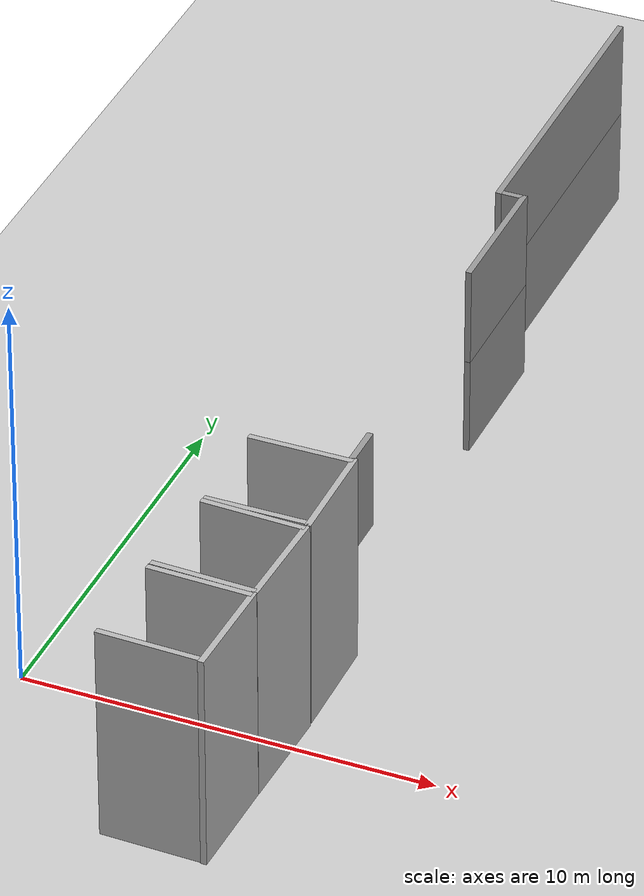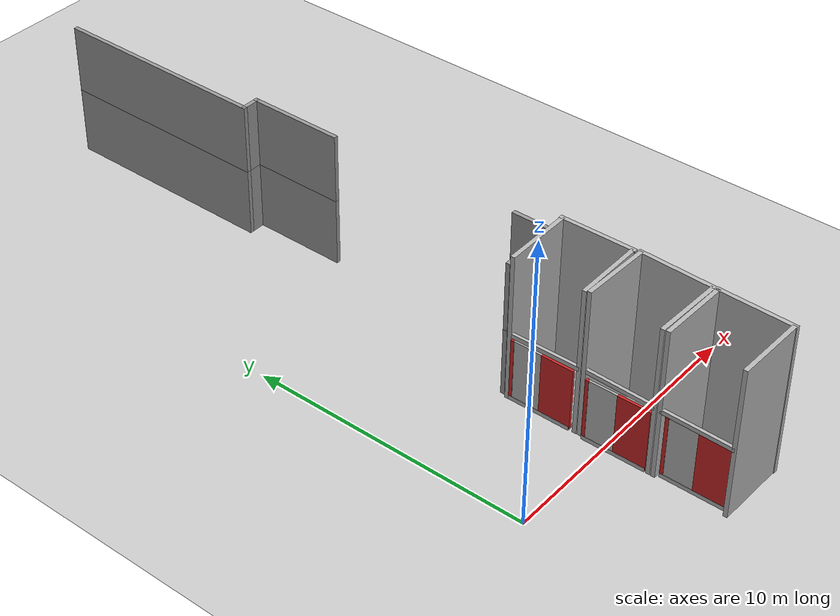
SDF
<sdf version="1.6">
 <world name="default">
  <model name="ground_plane">
   <static>1</static>
   <link name="link">
    <collision name="collision">
     <geometry><plane><normal>0 0 1</normal><size>100 100</size></plane></geometry>
     <surface>
      <contact><collide_bitmask>65535</collide_bitmask></contact>
      <friction><ode><mu>100</mu><mu2>50</mu2></ode></friction>
     </surface>
    </collision>
    <visual name="visual">
     <cast_shadows>0</cast_shadows>
     <geometry><plane><normal>0 0 1</normal><size>100 100</size></plane></geometry>
     <material>
      <script><uri>file://media/materials/scripts/gazebo.material</uri><name>Gazebo/Grey</name></script>
     </material>
    </visual>
   </link>
  </model>
  <model name="bush_refined_2floors">
   <pose>3.42472 8.10808 0 0 -0 0</pose>
   <link name="Wall_1012">
    <collision name="Wall_1012_Collision">
     <geometry><box><size>1.5 0.15 2.5</size></box></geometry>
     <pose>0 0 1.25 0 -0 0</pose>
    </collision>
    <visual name="Wall_1012_Visual">
     <pose>0 0 1.25 0 -0 0</pose>
     <geometry><box><size>1.5 0.15 2.5</size></box></geometry>
     <material>
      <script><uri>file://media/materials/scripts/gazebo.material</uri><name>Gazebo/Grey</name></script>
      <ambient>1 1 1 1</ambient>
     </material>
     <meta><layer>1</layer></meta>
    </visual>
    <pose>2.80971 -3.61953 2.5 0 -0 -1.5708</pose>
   </link>
   <link name="Wall_1013">
    <collision name="Wall_1013_Collision">
     <geometry><box><size>2.25 0.15 2.5</size></box></geometry>
     <pose>0 0 1.25 0 -0 0</pose>
    </collision>
    <visual name="Wall_1013_Visual">
     <pose>0 0 1.25 0 -0 0</pose>
     <geometry><box><size>2.25 0.15 2.5</size></box></geometry>
     <material>
      <script><uri>file://media/materials/scripts/gazebo.material</uri><name>Gazebo/Grey</name></script>
      <ambient>1 1 1 1</ambient>
     </material>
     <meta><layer>1</layer></meta>
    </visual>
    <pose>1.75971 -4.29453 2.5 0 -0 3.14159</pose>
   </link>
   <link name="Wall_1023">
    <collision name="Wall_1023_Collision">
     <geometry><box><size>8 0.15 2.5</size></box></geometry>
     <pose>0 0 1.25 0 -0 0</pose>
    </collision>
    <visual name="Wall_1023_Visual">
     <pose>0 0 1.25 0 -0 0</pose>
     <geometry><box><size>8 0.15 2.5</size></box></geometry>
     <material>
      <script><uri>file://media/materials/scripts/gazebo.material</uri><name>Gazebo/Grey</name></script>
      <ambient>1 1 1 1</ambient>
     </material>
     <meta><layer>1</layer></meta>
    </visual>
    <pose>1.8363 11.2255 2.5 0 -0 -1.5708</pose>
   </link>
   <link name="Wall_1024">
    <collision name="Wall_1024_Collision">
     <geometry><box><size>0.75 0.15 2.5</size></box></geometry>
     <pose>0 0 1.25 0 -0 0</pose>
    </collision>
    <visual name="Wall_1024_Visual">
     <pose>0 0 1.25 0 -0 0</pose>
     <geometry><box><size>0.75 0.15 2.5</size></box></geometry>
     <material>
      <script><uri>file://media/materials/scripts/gazebo.material</uri><name>Gazebo/Grey</name></script>
      <ambient>1 1 1 1</ambient>
     </material>
     <meta><layer>1</layer></meta>
    </visual>
    <pose>2.1363 7.30051 2.5 0 -0 0</pose>
   </link>
   <link name="Wall_1025">
    <collision name="Wall_1025_Collision">
     <geometry><box><size>3.5 0.15 2.5</size></box></geometry>
     <pose>0 0 1.25 0 -0 0</pose>
    </collision>
    <visual name="Wall_1025_Visual">
     <pose>0 0 1.25 0 -0 0</pose>
     <geometry><box><size>3.5 0.15 2.5</size></box></geometry>
     <material>
      <script><uri>file://media/materials/scripts/gazebo.material</uri><name>Gazebo/Grey</name></script>
      <ambient>1 1 1 1</ambient>
     </material>
     <meta><layer>1</layer></meta>
    </visual>
    <pose>2.4363 5.62552 2.5 0 -0 -1.5708</pose>
   </link>
   <link name="Wall_108">
    <collision name="Wall_108_Collision">
     <geometry><box><size>8 0.15 2.5</size></box></geometry>
     <pose>0 0 1.25 0 -0 0</pose>
    </collision>
    <visual name="Wall_108_Visual">
     <pose>0 0 1.25 0 -0 0</pose>
     <geometry><box><size>8 0.15 2.5</size></box></geometry>
     <material>
      <script><uri>file://media/materials/scripts/gazebo.material</uri><name>Gazebo/Grey</name></script>
      <ambient>1 1 1 1</ambient>
     </material>
     <meta><layer>0</layer></meta>
    </visual>
    <pose>1.8363 11.2255 0 0 -0 -1.5708</pose>
   </link>
   <link name="Wall_109">
    <collision name="Wall_109_Collision">
     <geometry><box><size>0.75 0.15 2.5</size></box></geometry>
     <pose>0 0 1.25 0 -0 0</pose>
    </collision>
    <visual name="Wall_109_Visual">
     <pose>0 0 1.25 0 -0 0</pose>
     <geometry><box><size>0.75 0.15 2.5</size></box></geometry>
     <material>
      <script><uri>file://media/materials/scripts/gazebo.material</uri><name>Gazebo/Grey</name></script>
      <ambient>1 1 1 1</ambient>
     </material>
     <meta><layer>0</layer></meta>
    </visual>
    <pose>2.1363 7.30051 0 0 -0 0</pose>
   </link>
   <link name="Wall_110">
    <collision name="Wall_110_Collision">
     <geometry><box><size>3.5 0.15 2.5</size></box></geometry>
     <pose>0 0 1.25 0 -0 0</pose>
    </collision>
    <visual name="Wall_110_Visual">
     <pose>0 0 1.25 0 -0 0</pose>
     <geometry><box><size>3.5 0.15 2.5</size></box></geometry>
     <material>
      <script><uri>file://media/materials/scripts/gazebo.material</uri><name>Gazebo/Grey</name></script>
      <ambient>1 1 1 1</ambient>
     </material>
     <meta><layer>0</layer></meta>
    </visual>
    <pose>2.4363 5.62552 0 0 -0 -1.5708</pose>
   </link>
   <link name="Wall_94">
    <collision name="Wall_94_Collision">
     <geometry><box><size>2.25 0.15 2.5</size></box></geometry>
     <pose>0 0 1.25 0 -0 0</pose>
    </collision>
    <visual name="Wall_94_Visual">
     <pose>0 0 1.25 0 -0 0</pose>
     <geometry><box><size>2.25 0.15 2.5</size></box></geometry>
     <material>
      <script><uri>file://media/materials/scripts/gazebo.material</uri><name>Gazebo/Grey</name></script>
      <ambient>1 1 1 1</ambient>
     </material>
     <meta><layer>0</layer></meta>
    </visual>
    <pose>1.75971 -4.29453 0 0 -0 3.14159</pose>
   </link>
   <static>1</static>
  </model>
  <model name="elevator_shaft_1">
   <link name="link">
    <visual name="shaft_wall2_visual">
     <pose>0 -1.25 3 0 -0 0</pose>
     <geometry><box><size>2.5 0.15 6</size></box></geometry>
    </visual>
    <visual name="shaft_wall3_visual">
     <pose>-1.25 0 3 0 -0 0</pose>
     <geometry><box><size>0.15 2.7 6</size></box></geometry>
    </visual>
    <visual name="floor0_visual">
     <pose>1.19 0 0.075 0 -0 0</pose>
     <geometry><box><size>0.12 2.5 0.15</size></box></geometry>
    </visual>
    <visual name="floor1_visual">
     <pose>1.19 0 3.075 0 -0 0</pose>
     <geometry><box><size>0.12 2.5 0.15</size></box></geometry>
    </visual>
    <visual name="shaft_wall1_visual">
     <pose>0 1.25 3 0 -0 0</pose>
     <geometry><box><size>2.5 0.15 6</size></box></geometry>
    </visual>
    <collision name="shaft_wall1_collision">
     <pose>0 1.25 3 0 -0 0</pose>
     <geometry><box><size>2.5 0.15 6</size></box></geometry>
     <surface>
      <friction>
       <ode><mu>1</mu><mu2>1</mu2><fdir1>0 0 0</fdir1><slip1>0</slip1><slip2>0</slip2></ode>
       <torsional>
        <coefficient>1</coefficient>
        <patch_radius>0</patch_radius>
        <surface_radius>0</surface_radius>
        <use_patch_radius>1</use_patch_radius>
        <ode><slip>0</slip></ode>
       </torsional>
      </friction>
      <bounce><restitution_coefficient>0</restitution_coefficient><threshold>1e+06</threshold></bounce>
      <contact>
       <collide_without_contact>0</collide_without_contact>
       <collide_without_contact_bitmask>1</collide_without_contact_bitmask>
       <collide_bitmask>1</collide_bitmask>
       <ode>
        <soft_cfm>0</soft_cfm>
        <soft_erp>0.2</soft_erp>
        <kp>1e+13</kp>
        <kd>1</kd>
        <max_vel>0.01</max_vel>
        <min_depth>0</min_depth>
       </ode>
       <bullet>
        <split_impulse>1</split_impulse>
        <split_impulse_penetration_threshold>-0.01</split_impulse_penetration_threshold>
        <soft_cfm>0</soft_cfm>
        <soft_erp>0.2</soft_erp>
        <kp>1e+13</kp>
        <kd>1</kd>
       </bullet>
      </contact>
     </surface>
    </collision>
    <collision name="shaft_wall2_collision">
     <pose>0 -1.25 3 0 -0 0</pose>
     <geometry><box><size>2.5 0.15 6</size></box></geometry>
     <surface>
      <friction>
       <ode><mu>1</mu><mu2>1</mu2><fdir1>0 0 0</fdir1><slip1>0</slip1><slip2>0</slip2></ode>
       <torsional>
        <coefficient>1</coefficient>
        <patch_radius>0</patch_radius>
        <surface_radius>0</surface_radius>
        <use_patch_radius>1</use_patch_radius>
        <ode><slip>0</slip></ode>
       </torsional>
      </friction>
      <bounce><restitution_coefficient>0</restitution_coefficient><threshold>1e+06</threshold></bounce>
      <contact>
       <collide_without_contact>0</collide_without_contact>
       <collide_without_contact_bitmask>1</collide_without_contact_bitmask>
       <collide_bitmask>1</collide_bitmask>
       <ode>
        <soft_cfm>0</soft_cfm>
        <soft_erp>0.2</soft_erp>
        <kp>1e+13</kp>
        <kd>1</kd>
        <max_vel>0.01</max_vel>
        <min_depth>0</min_depth>
       </ode>
       <bullet>
        <split_impulse>1</split_impulse>
        <split_impulse_penetration_threshold>-0.01</split_impulse_penetration_threshold>
        <soft_cfm>0</soft_cfm>
        <soft_erp>0.2</soft_erp>
        <kp>1e+13</kp>
        <kd>1</kd>
       </bullet>
      </contact>
     </surface>
    </collision>
    <collision name="shaft_wall3_collision">
     <pose>-1.25 0 3 0 -0 0</pose>
     <geometry><box><size>0.15 2.7 6</size></box></geometry>
     <surface>
      <friction>
       <ode><mu>1</mu><mu2>1</mu2><fdir1>0 0 0</fdir1><slip1>0</slip1><slip2>0</slip2></ode>
       <torsional>
        <coefficient>1</coefficient>
        <patch_radius>0</patch_radius>
        <surface_radius>0</surface_radius>
        <use_patch_radius>1</use_patch_radius>
        <ode><slip>0</slip></ode>
       </torsional>
      </friction>
      <bounce><restitution_coefficient>0</restitution_coefficient><threshold>1e+06</threshold></bounce>
      <contact>
       <collide_without_contact>0</collide_without_contact>
       <collide_without_contact_bitmask>1</collide_without_contact_bitmask>
       <collide_bitmask>1</collide_bitmask>
       <ode>
        <soft_cfm>0</soft_cfm>
        <soft_erp>0.2</soft_erp>
        <kp>1e+13</kp>
        <kd>1</kd>
        <max_vel>0.01</max_vel>
        <min_depth>0</min_depth>
       </ode>
       <bullet>
        <split_impulse>1</split_impulse>
        <split_impulse_penetration_threshold>-0.01</split_impulse_penetration_threshold>
        <soft_cfm>0</soft_cfm>
        <soft_erp>0.2</soft_erp>
        <kp>1e+13</kp>
        <kd>1</kd>
       </bullet>
      </contact>
     </surface>
    </collision>
    <collision name="floor0_collision">
     <pose>1.19 0 0.075 0 -0 0</pose>
     <geometry><box><size>0.12 2.5 0.15</size></box></geometry>
     <surface>
      <friction>
       <ode><mu>1</mu><mu2>1</mu2><fdir1>0 0 0</fdir1><slip1>0</slip1><slip2>0</slip2></ode>
       <torsional>
        <coefficient>1</coefficient>
        <patch_radius>0</patch_radius>
        <surface_radius>0</surface_radius>
        <use_patch_radius>1</use_patch_radius>
        <ode><slip>0</slip></ode>
       </torsional>
      </friction>
      <bounce><restitution_coefficient>0</restitution_coefficient><threshold>1e+06</threshold></bounce>
      <contact>
       <collide_without_contact>0</collide_without_contact>
       <collide_without_contact_bitmask>1</collide_without_contact_bitmask>
       <collide_bitmask>1</collide_bitmask>
       <ode>
        <soft_cfm>0</soft_cfm>
        <soft_erp>0.2</soft_erp>
        <kp>1e+13</kp>
        <kd>1</kd>
        <max_vel>0.01</max_vel>
        <min_depth>0</min_depth>
       </ode>
       <bullet>
        <split_impulse>1</split_impulse>
        <split_impulse_penetration_threshold>-0.01</split_impulse_penetration_threshold>
        <soft_cfm>0</soft_cfm>
        <soft_erp>0.2</soft_erp>
        <kp>1e+13</kp>
        <kd>1</kd>
       </bullet>
      </contact>
     </surface>
    </collision>
    <collision name="floor1_collision">
     <pose>1.19 0 3.075 0 -0 0</pose>
     <geometry><box><size>0.12 2.5 0.15</size></box></geometry>
     <surface>
      <friction>
       <ode><mu>1</mu><mu2>1</mu2><fdir1>0 0 0</fdir1><slip1>0</slip1><slip2>0</slip2></ode>
       <torsional>
        <coefficient>1</coefficient>
        <patch_radius>0</patch_radius>
        <surface_radius>0</surface_radius>
        <use_patch_radius>1</use_patch_radius>
        <ode><slip>0</slip></ode>
       </torsional>
      </friction>
      <bounce><restitution_coefficient>0</restitution_coefficient><threshold>1e+06</threshold></bounce>
      <contact>
       <collide_without_contact>0</collide_without_contact>
       <collide_without_contact_bitmask>1</collide_without_contact_bitmask>
       <collide_bitmask>1</collide_bitmask>
       <ode>
        <soft_cfm>0</soft_cfm>
        <soft_erp>0.2</soft_erp>
        <kp>1e+13</kp>
        <kd>1</kd>
        <max_vel>0.01</max_vel>
        <min_depth>0</min_depth>
       </ode>
       <bullet>
        <split_impulse>1</split_impulse>
        <split_impulse_penetration_threshold>-0.01</split_impulse_penetration_threshold>
        <soft_cfm>0</soft_cfm>
        <soft_erp>0.2</soft_erp>
        <kp>1e+13</kp>
        <kd>1</kd>
       </bullet>
      </contact>
     </surface>
    </collision>
   </link>
   <static>1</static>
   <pose>5.25914 2.36455 -0.617638 0 0 -3.13334</pose>
  </model>
  <model name="elevator_shaft_2">
   <link name="link">
    <visual name="shaft_wall2_visual">
     <pose>0 -1.25 3 0 -0 0</pose>
     <geometry><box><size>2.5 0.15 6</size></box></geometry>
    </visual>
    <visual name="shaft_wall3_visual">
     <pose>-1.25 0 3 0 -0 0</pose>
     <geometry><box><size>0.15 2.7 6</size></box></geometry>
    </visual>
    <visual name="floor0_visual">
     <pose>1.19 0 0.075 0 -0 0</pose>
     <geometry><box><size>0.12 2.5 0.15</size></box></geometry>
    </visual>
    <visual name="floor1_visual">
     <pose>1.19 0 3.075 0 -0 0</pose>
     <geometry><box><size>0.12 2.5 0.15</size></box></geometry>
    </visual>
    <visual name="shaft_wall1_visual">
     <pose>0 1.25 3 0 -0 0</pose>
     <geometry><box><size>2.5 0.15 6</size></box></geometry>
    </visual>
    <collision name="shaft_wall1_collision">
     <pose>0 1.25 3 0 -0 0</pose>
     <geometry><box><size>2.5 0.15 6</size></box></geometry>
     <surface>
      <friction>
       <ode><mu>1</mu><mu2>1</mu2><fdir1>0 0 0</fdir1><slip1>0</slip1><slip2>0</slip2></ode>
       <torsional>
        <coefficient>1</coefficient>
        <patch_radius>0</patch_radius>
        <surface_radius>0</surface_radius>
        <use_patch_radius>1</use_patch_radius>
        <ode><slip>0</slip></ode>
       </torsional>
      </friction>
      <bounce><restitution_coefficient>0</restitution_coefficient><threshold>1e+06</threshold></bounce>
      <contact>
       <collide_without_contact>0</collide_without_contact>
       <collide_without_contact_bitmask>1</collide_without_contact_bitmask>
       <collide_bitmask>1</collide_bitmask>
       <ode>
        <soft_cfm>0</soft_cfm>
        <soft_erp>0.2</soft_erp>
        <kp>1e+13</kp>
        <kd>1</kd>
        <max_vel>0.01</max_vel>
        <min_depth>0</min_depth>
       </ode>
       <bullet>
        <split_impulse>1</split_impulse>
        <split_impulse_penetration_threshold>-0.01</split_impulse_penetration_threshold>
        <soft_cfm>0</soft_cfm>
        <soft_erp>0.2</soft_erp>
        <kp>1e+13</kp>
        <kd>1</kd>
       </bullet>
      </contact>
     </surface>
    </collision>
    <collision name="shaft_wall2_collision">
     <pose>0 -1.25 3 0 -0 0</pose>
     <geometry><box><size>2.5 0.15 6</size></box></geometry>
     <surface>
      <friction>
       <ode><mu>1</mu><mu2>1</mu2><fdir1>0 0 0</fdir1><slip1>0</slip1><slip2>0</slip2></ode>
       <torsional>
        <coefficient>1</coefficient>
        <patch_radius>0</patch_radius>
        <surface_radius>0</surface_radius>
        <use_patch_radius>1</use_patch_radius>
        <ode><slip>0</slip></ode>
       </torsional>
      </friction>
      <bounce><restitution_coefficient>0</restitution_coefficient><threshold>1e+06</threshold></bounce>
      <contact>
       <collide_without_contact>0</collide_without_contact>
       <collide_without_contact_bitmask>1</collide_without_contact_bitmask>
       <collide_bitmask>1</collide_bitmask>
       <ode>
        <soft_cfm>0</soft_cfm>
        <soft_erp>0.2</soft_erp>
        <kp>1e+13</kp>
        <kd>1</kd>
        <max_vel>0.01</max_vel>
        <min_depth>0</min_depth>
       </ode>
       <bullet>
        <split_impulse>1</split_impulse>
        <split_impulse_penetration_threshold>-0.01</split_impulse_penetration_threshold>
        <soft_cfm>0</soft_cfm>
        <soft_erp>0.2</soft_erp>
        <kp>1e+13</kp>
        <kd>1</kd>
       </bullet>
      </contact>
     </surface>
    </collision>
    <collision name="shaft_wall3_collision">
     <pose>-1.25 0 3 0 -0 0</pose>
     <geometry><box><size>0.15 2.7 6</size></box></geometry>
     <surface>
      <friction>
       <ode><mu>1</mu><mu2>1</mu2><fdir1>0 0 0</fdir1><slip1>0</slip1><slip2>0</slip2></ode>
       <torsional>
        <coefficient>1</coefficient>
        <patch_radius>0</patch_radius>
        <surface_radius>0</surface_radius>
        <use_patch_radius>1</use_patch_radius>
        <ode><slip>0</slip></ode>
       </torsional>
      </friction>
      <bounce><restitution_coefficient>0</restitution_coefficient><threshold>1e+06</threshold></bounce>
      <contact>
       <collide_without_contact>0</collide_without_contact>
       <collide_without_contact_bitmask>1</collide_without_contact_bitmask>
       <collide_bitmask>1</collide_bitmask>
       <ode>
        <soft_cfm>0</soft_cfm>
        <soft_erp>0.2</soft_erp>
        <kp>1e+13</kp>
        <kd>1</kd>
        <max_vel>0.01</max_vel>
        <min_depth>0</min_depth>
       </ode>
       <bullet>
        <split_impulse>1</split_impulse>
        <split_impulse_penetration_threshold>-0.01</split_impulse_penetration_threshold>
        <soft_cfm>0</soft_cfm>
        <soft_erp>0.2</soft_erp>
        <kp>1e+13</kp>
        <kd>1</kd>
       </bullet>
      </contact>
     </surface>
    </collision>
    <collision name="floor0_collision">
     <pose>1.19 0 0.075 0 -0 0</pose>
     <geometry><box><size>0.12 2.5 0.15</size></box></geometry>
     <surface>
      <friction>
       <ode><mu>1</mu><mu2>1</mu2><fdir1>0 0 0</fdir1><slip1>0</slip1><slip2>0</slip2></ode>
       <torsional>
        <coefficient>1</coefficient>
        <patch_radius>0</patch_radius>
        <surface_radius>0</surface_radius>
        <use_patch_radius>1</use_patch_radius>
        <ode><slip>0</slip></ode>
       </torsional>
      </friction>
      <bounce><restitution_coefficient>0</restitution_coefficient><threshold>1e+06</threshold></bounce>
      <contact>
       <collide_without_contact>0</collide_without_contact>
       <collide_without_contact_bitmask>1</collide_without_contact_bitmask>
       <collide_bitmask>1</collide_bitmask>
       <ode>
        <soft_cfm>0</soft_cfm>
        <soft_erp>0.2</soft_erp>
        <kp>1e+13</kp>
        <kd>1</kd>
        <max_vel>0.01</max_vel>
        <min_depth>0</min_depth>
       </ode>
       <bullet>
        <split_impulse>1</split_impulse>
        <split_impulse_penetration_threshold>-0.01</split_impulse_penetration_threshold>
        <soft_cfm>0</soft_cfm>
        <soft_erp>0.2</soft_erp>
        <kp>1e+13</kp>
        <kd>1</kd>
       </bullet>
      </contact>
     </surface>
    </collision>
    <collision name="floor1_collision">
     <pose>1.19 0 3.075 0 -0 0</pose>
     <geometry><box><size>0.12 2.5 0.15</size></box></geometry>
     <surface>
      <friction>
       <ode><mu>1</mu><mu2>1</mu2><fdir1>0 0 0</fdir1><slip1>0</slip1><slip2>0</slip2></ode>
       <torsional>
        <coefficient>1</coefficient>
        <patch_radius>0</patch_radius>
        <surface_radius>0</surface_radius>
        <use_patch_radius>1</use_patch_radius>
        <ode><slip>0</slip></ode>
       </torsional>
      </friction>
      <bounce><restitution_coefficient>0</restitution_coefficient><threshold>1e+06</threshold></bounce>
      <contact>
       <collide_without_contact>0</collide_without_contact>
       <collide_without_contact_bitmask>1</collide_without_contact_bitmask>
       <collide_bitmask>1</collide_bitmask>
       <ode>
        <soft_cfm>0</soft_cfm>
        <soft_erp>0.2</soft_erp>
        <kp>1e+13</kp>
        <kd>1</kd>
        <max_vel>0.01</max_vel>
        <min_depth>0</min_depth>
       </ode>
       <bullet>
        <split_impulse>1</split_impulse>
        <split_impulse_penetration_threshold>-0.01</split_impulse_penetration_threshold>
        <soft_cfm>0</soft_cfm>
        <soft_erp>0.2</soft_erp>
        <kp>1e+13</kp>
        <kd>1</kd>
       </bullet>
      </contact>
     </surface>
    </collision>
   </link>
   <static>1</static>
   <pose>5.24214 -0.352259 -0.571977 0 -0 3.10981</pose>
  </model>
  <model name="elevator_shaft_3">
   <link name="link">
    <visual name="shaft_wall2_visual">
     <pose>0 -1.25 3 0 -0 0</pose>
     <geometry><box><size>2.5 0.15 6</size></box></geometry>
    </visual>
    <visual name="shaft_wall3_visual">
     <pose>-1.25 0 3 0 -0 0</pose>
     <geometry><box><size>0.15 2.7 6</size></box></geometry>
    </visual>
    <visual name="floor0_visual">
     <pose>1.19 0 0.075 0 -0 0</pose>
     <geometry><box><size>0.12 2.5 0.15</size></box></geometry>
    </visual>
    <visual name="floor1_visual">
     <pose>1.19 0 3.075 0 -0 0</pose>
     <geometry><box><size>0.12 2.5 0.15</size></box></geometry>
    </visual>
    <visual name="shaft_wall1_visual">
     <pose>0 1.25 3 0 -0 0</pose>
     <geometry><box><size>2.5 0.15 6</size></box></geometry>
    </visual>
    <collision name="shaft_wall1_collision">
     <pose>0 1.25 3 0 -0 0</pose>
     <geometry><box><size>2.5 0.15 6</size></box></geometry>
     <surface>
      <friction>
       <ode><mu>1</mu><mu2>1</mu2><fdir1>0 0 0</fdir1><slip1>0</slip1><slip2>0</slip2></ode>
       <torsional>
        <coefficient>1</coefficient>
        <patch_radius>0</patch_radius>
        <surface_radius>0</surface_radius>
        <use_patch_radius>1</use_patch_radius>
        <ode><slip>0</slip></ode>
       </torsional>
      </friction>
      <bounce><restitution_coefficient>0</restitution_coefficient><threshold>1e+06</threshold></bounce>
      <contact>
       <collide_without_contact>0</collide_without_contact>
       <collide_without_contact_bitmask>1</collide_without_contact_bitmask>
       <collide_bitmask>1</collide_bitmask>
       <ode>
        <soft_cfm>0</soft_cfm>
        <soft_erp>0.2</soft_erp>
        <kp>1e+13</kp>
        <kd>1</kd>
        <max_vel>0.01</max_vel>
        <min_depth>0</min_depth>
       </ode>
       <bullet>
        <split_impulse>1</split_impulse>
        <split_impulse_penetration_threshold>-0.01</split_impulse_penetration_threshold>
        <soft_cfm>0</soft_cfm>
        <soft_erp>0.2</soft_erp>
        <kp>1e+13</kp>
        <kd>1</kd>
       </bullet>
      </contact>
     </surface>
    </collision>
    <collision name="shaft_wall2_collision">
     <pose>0 -1.25 3 0 -0 0</pose>
     <geometry><box><size>2.5 0.15 6</size></box></geometry>
     <surface>
      <friction>
       <ode><mu>1</mu><mu2>1</mu2><fdir1>0 0 0</fdir1><slip1>0</slip1><slip2>0</slip2></ode>
       <torsional>
        <coefficient>1</coefficient>
        <patch_radius>0</patch_radius>
        <surface_radius>0</surface_radius>
        <use_patch_radius>1</use_patch_radius>
        <ode><slip>0</slip></ode>
       </torsional>
      </friction>
      <bounce><restitution_coefficient>0</restitution_coefficient><threshold>1e+06</threshold></bounce>
      <contact>
       <collide_without_contact>0</collide_without_contact>
       <collide_without_contact_bitmask>1</collide_without_contact_bitmask>
       <collide_bitmask>1</collide_bitmask>
       <ode>
        <soft_cfm>0</soft_cfm>
        <soft_erp>0.2</soft_erp>
        <kp>1e+13</kp>
        <kd>1</kd>
        <max_vel>0.01</max_vel>
        <min_depth>0</min_depth>
       </ode>
       <bullet>
        <split_impulse>1</split_impulse>
        <split_impulse_penetration_threshold>-0.01</split_impulse_penetration_threshold>
        <soft_cfm>0</soft_cfm>
        <soft_erp>0.2</soft_erp>
        <kp>1e+13</kp>
        <kd>1</kd>
       </bullet>
      </contact>
     </surface>
    </collision>
    <collision name="shaft_wall3_collision">
     <pose>-1.25 0 3 0 -0 0</pose>
     <geometry><box><size>0.15 2.7 6</size></box></geometry>
     <surface>
      <friction>
       <ode><mu>1</mu><mu2>1</mu2><fdir1>0 0 0</fdir1><slip1>0</slip1><slip2>0</slip2></ode>
       <torsional>
        <coefficient>1</coefficient>
        <patch_radius>0</patch_radius>
        <surface_radius>0</surface_radius>
        <use_patch_radius>1</use_patch_radius>
        <ode><slip>0</slip></ode>
       </torsional>
      </friction>
      <bounce><restitution_coefficient>0</restitution_coefficient><threshold>1e+06</threshold></bounce>
      <contact>
       <collide_without_contact>0</collide_without_contact>
       <collide_without_contact_bitmask>1</collide_without_contact_bitmask>
       <collide_bitmask>1</collide_bitmask>
       <ode>
        <soft_cfm>0</soft_cfm>
        <soft_erp>0.2</soft_erp>
        <kp>1e+13</kp>
        <kd>1</kd>
        <max_vel>0.01</max_vel>
        <min_depth>0</min_depth>
       </ode>
       <bullet>
        <split_impulse>1</split_impulse>
        <split_impulse_penetration_threshold>-0.01</split_impulse_penetration_threshold>
        <soft_cfm>0</soft_cfm>
        <soft_erp>0.2</soft_erp>
        <kp>1e+13</kp>
        <kd>1</kd>
       </bullet>
      </contact>
     </surface>
    </collision>
    <collision name="floor0_collision">
     <pose>1.19 0 0.075 0 -0 0</pose>
     <geometry><box><size>0.12 2.5 0.15</size></box></geometry>
     <surface>
      <friction>
       <ode><mu>1</mu><mu2>1</mu2><fdir1>0 0 0</fdir1><slip1>0</slip1><slip2>0</slip2></ode>
       <torsional>
        <coefficient>1</coefficient>
        <patch_radius>0</patch_radius>
        <surface_radius>0</surface_radius>
        <use_patch_radius>1</use_patch_radius>
        <ode><slip>0</slip></ode>
       </torsional>
      </friction>
      <bounce><restitution_coefficient>0</restitution_coefficient><threshold>1e+06</threshold></bounce>
      <contact>
       <collide_without_contact>0</collide_without_contact>
       <collide_without_contact_bitmask>1</collide_without_contact_bitmask>
       <collide_bitmask>1</collide_bitmask>
       <ode>
        <soft_cfm>0</soft_cfm>
        <soft_erp>0.2</soft_erp>
        <kp>1e+13</kp>
        <kd>1</kd>
        <max_vel>0.01</max_vel>
        <min_depth>0</min_depth>
       </ode>
       <bullet>
        <split_impulse>1</split_impulse>
        <split_impulse_penetration_threshold>-0.01</split_impulse_penetration_threshold>
        <soft_cfm>0</soft_cfm>
        <soft_erp>0.2</soft_erp>
        <kp>1e+13</kp>
        <kd>1</kd>
       </bullet>
      </contact>
     </surface>
    </collision>
    <collision name="floor1_collision">
     <pose>1.19 0 3.075 0 -0 0</pose>
     <geometry><box><size>0.12 2.5 0.15</size></box></geometry>
     <surface>
      <friction>
       <ode><mu>1</mu><mu2>1</mu2><fdir1>0 0 0</fdir1><slip1>0</slip1><slip2>0</slip2></ode>
       <torsional>
        <coefficient>1</coefficient>
        <patch_radius>0</patch_radius>
        <surface_radius>0</surface_radius>
        <use_patch_radius>1</use_patch_radius>
        <ode><slip>0</slip></ode>
       </torsional>
      </friction>
      <bounce><restitution_coefficient>0</restitution_coefficient><threshold>1e+06</threshold></bounce>
      <contact>
       <collide_without_contact>0</collide_without_contact>
       <collide_without_contact_bitmask>1</collide_without_contact_bitmask>
       <collide_bitmask>1</collide_bitmask>
       <ode>
        <soft_cfm>0</soft_cfm>
        <soft_erp>0.2</soft_erp>
        <kp>1e+13</kp>
        <kd>1</kd>
        <max_vel>0.01</max_vel>
        <min_depth>0</min_depth>
       </ode>
       <bullet>
        <split_impulse>1</split_impulse>
        <split_impulse_penetration_threshold>-0.01</split_impulse_penetration_threshold>
        <soft_cfm>0</soft_cfm>
        <soft_erp>0.2</soft_erp>
        <kp>1e+13</kp>
        <kd>1</kd>
       </bullet>
      </contact>
     </surface>
    </collision>
   </link>
   <static>1</static>
   <pose>5.16566 -3.02804 -0.555444 0 -0 3.11858</pose>
  </model>
  <model name="elevator_1">
   <link name="link">
    <inertial>
     <mass>800</mass>
     <inertia><ixx>1</ixx><ixy>0</ixy><ixz>0</ixz><iyy>1</iyy><iyz>0</iyz><izz>1</izz></inertia>
    </inertial>
    <visual name="floor_visual"><geometry><box><size>2.25 2.25 0.15</size></box></geometry></visual>
    <visual name="wall1_visual">
     <pose>1.0745 0.5725 1.125 0 -0 0</pose>
     <geometry><box><size>0.1 1.15 2.25</size></box></geometry>
     <material><script><name>Gazebo/Red</name><uri>__default__</uri></script></material>
    </visual>
    <visual name="wall2_visual">
     <pose>1.0745 -1.0625 1.125 0 -0 0</pose>
     <geometry><box><size>0.1 0.125 2.25</size></box></geometry>
     <material><script><name>Gazebo/Red</name><uri>__default__</uri></script></material>
    </visual>
    <collision name="wall1_collision">
     <pose>1.0745 0.5725 1.125 0 -0 0</pose>
     <geometry><box><size>0.1 1.15 2.25</size></box></geometry>
     <surface>
      <friction>
       <ode><mu>1</mu><mu2>1</mu2><fdir1>0 0 0</fdir1><slip1>0</slip1><slip2>0</slip2></ode>
       <torsional>
        <coefficient>1</coefficient>
        <patch_radius>0</patch_radius>
        <surface_radius>0</surface_radius>
        <use_patch_radius>1</use_patch_radius>
        <ode><slip>0</slip></ode>
       </torsional>
      </friction>
      <bounce><restitution_coefficient>0</restitution_coefficient><threshold>1e+06</threshold></bounce>
      <contact>
       <collide_without_contact>0</collide_without_contact>
       <collide_without_contact_bitmask>1</collide_without_contact_bitmask>
       <collide_bitmask>1</collide_bitmask>
       <ode>
        <soft_cfm>0</soft_cfm>
        <soft_erp>0.2</soft_erp>
        <kp>1e+13</kp>
        <kd>1</kd>
        <max_vel>0.01</max_vel>
        <min_depth>0</min_depth>
       </ode>
       <bullet>
        <split_impulse>1</split_impulse>
        <split_impulse_penetration_threshold>-0.01</split_impulse_penetration_threshold>
        <soft_cfm>0</soft_cfm>
        <soft_erp>0.2</soft_erp>
        <kp>1e+13</kp>
        <kd>1</kd>
       </bullet>
      </contact>
     </surface>
    </collision>
    <collision name="wall2_collision">
     <pose>1.0745 -1.0625 1.125 0 -0 0</pose>
     <geometry><box><size>0.1 0.125 2.25</size></box></geometry>
     <surface>
      <friction>
       <ode><mu>1</mu><mu2>1</mu2><fdir1>0 0 0</fdir1><slip1>0</slip1><slip2>0</slip2></ode>
       <torsional>
        <coefficient>1</coefficient>
        <patch_radius>0</patch_radius>
        <surface_radius>0</surface_radius>
        <use_patch_radius>1</use_patch_radius>
        <ode><slip>0</slip></ode>
       </torsional>
      </friction>
      <bounce><restitution_coefficient>0</restitution_coefficient><threshold>1e+06</threshold></bounce>
      <contact>
       <collide_without_contact>0</collide_without_contact>
       <collide_without_contact_bitmask>1</collide_without_contact_bitmask>
       <collide_bitmask>1</collide_bitmask>
       <ode>
        <soft_cfm>0</soft_cfm>
        <soft_erp>0.2</soft_erp>
        <kp>1e+13</kp>
        <kd>1</kd>
        <max_vel>0.01</max_vel>
        <min_depth>0</min_depth>
       </ode>
       <bullet>
        <split_impulse>1</split_impulse>
        <split_impulse_penetration_threshold>-0.01</split_impulse_penetration_threshold>
        <soft_cfm>0</soft_cfm>
        <soft_erp>0.2</soft_erp>
        <kp>1e+13</kp>
        <kd>1</kd>
       </bullet>
      </contact>
     </surface>
    </collision>
    <collision name="floor_collision">
     <geometry><box><size>2.25 2.25 0.15</size></box></geometry>
     <surface>
      <friction>
       <ode><mu>1</mu><mu2>1</mu2><fdir1>0 0 0</fdir1><slip1>0</slip1><slip2>0</slip2></ode>
       <torsional>
        <coefficient>1</coefficient>
        <patch_radius>0</patch_radius>
        <surface_radius>0</surface_radius>
        <use_patch_radius>1</use_patch_radius>
        <ode><slip>0</slip></ode>
       </torsional>
      </friction>
      <bounce><restitution_coefficient>0</restitution_coefficient><threshold>1e+06</threshold></bounce>
      <contact>
       <collide_without_contact>0</collide_without_contact>
       <collide_without_contact_bitmask>1</collide_without_contact_bitmask>
       <collide_bitmask>1</collide_bitmask>
       <ode>
        <soft_cfm>0</soft_cfm>
        <soft_erp>0.2</soft_erp>
        <kp>1e+13</kp>
        <kd>1</kd>
        <max_vel>0.01</max_vel>
        <min_depth>0</min_depth>
       </ode>
       <bullet>
        <split_impulse>1</split_impulse>
        <split_impulse_penetration_threshold>-0.01</split_impulse_penetration_threshold>
        <soft_cfm>0</soft_cfm>
        <soft_erp>0.2</soft_erp>
        <kp>1e+13</kp>
        <kd>1</kd>
       </bullet>
      </contact>
     </surface>
    </collision>
   </link>
   <link name="door">
    <pose>1.0745 -0.5 1.125 0 -0 0</pose>
    <inertial>
     <inertia><ixx>1</ixx><ixy>0</ixy><ixz>0</ixz><iyy>1</iyy><iyz>0</iyz><izz>1</izz></inertia>
     <mass>1</mass>
    </inertial>
    <visual name="visual"><geometry><box><size>0.08 1 2.25</size></box></geometry></visual>
    <collision name="collision">
     <geometry><box><size>0.08 1 2.25</size></box></geometry>
     <surface>
      <friction>
       <ode><mu>1</mu><mu2>1</mu2><fdir1>0 0 0</fdir1><slip1>0</slip1><slip2>0</slip2></ode>
       <torsional>
        <coefficient>1</coefficient>
        <patch_radius>0</patch_radius>
        <surface_radius>0</surface_radius>
        <use_patch_radius>1</use_patch_radius>
        <ode><slip>0</slip></ode>
       </torsional>
      </friction>
      <bounce><restitution_coefficient>0</restitution_coefficient><threshold>1e+06</threshold></bounce>
      <contact>
       <collide_without_contact>0</collide_without_contact>
       <collide_without_contact_bitmask>1</collide_without_contact_bitmask>
       <collide_bitmask>1</collide_bitmask>
       <ode>
        <soft_cfm>0</soft_cfm>
        <soft_erp>0.2</soft_erp>
        <kp>1e+13</kp>
        <kd>1</kd>
        <max_vel>0.01</max_vel>
        <min_depth>0</min_depth>
       </ode>
       <bullet>
        <split_impulse>1</split_impulse>
        <split_impulse_penetration_threshold>-0.01</split_impulse_penetration_threshold>
        <soft_cfm>0</soft_cfm>
        <soft_erp>0.2</soft_erp>
        <kp>1e+13</kp>
        <kd>1</kd>
       </bullet>
      </contact>
     </surface>
    </collision>
   </link>
   <joint name="door" type="prismatic">
    <parent>link</parent>
    <child>door</child>
    <axis>
     <xyz>0 1 0</xyz>
     <use_parent_model_frame>0</use_parent_model_frame>
     <limit><lower>0</lower><upper>1</upper><effort>10</effort><velocity>-1</velocity></limit>
     <dynamics>
      <spring_reference>0</spring_reference>
      <spring_stiffness>0</spring_stiffness>
      <damping>2</damping>
      <friction>0</friction>
     </dynamics>
    </axis>
    <physics>
     <ode><limit><cfm>0</cfm><erp>0.2</erp></limit><suspension><cfm>0</cfm><erp>0.2</erp></suspension></ode>
    </physics>
   </joint>
   <static>0</static>
   <plugin name="elevator_plugin" filename="libElevatorPlugin.so">
    <lift_joint>elevator::lift</lift_joint>
    <door_joint>elevator::door</door_joint>
    <floor_height>3.075</floor_height>
    <door_wait_time>10</door_wait_time>
    <topic>~/elevator</topic>
   </plugin>
   <pose>5.096 2.39935 0.074786 1e-06 -0.000338 3.13718</pose>
  </model>
  <model name="elevator_2">
   <link name="link">
    <inertial>
     <mass>800</mass>
     <inertia><ixx>1</ixx><ixy>0</ixy><ixz>0</ixz><iyy>1</iyy><iyz>0</iyz><izz>1</izz></inertia>
    </inertial>
    <visual name="floor_visual"><geometry><box><size>2.25 2.25 0.15</size></box></geometry></visual>
    <visual name="wall1_visual">
     <pose>1.0745 0.5725 1.125 0 -0 0</pose>
     <geometry><box><size>0.1 1.15 2.25</size></box></geometry>
     <material><script><name>Gazebo/Red</name><uri>__default__</uri></script></material>
    </visual>
    <visual name="wall2_visual">
     <pose>1.0745 -1.0625 1.125 0 -0 0</pose>
     <geometry><box><size>0.1 0.125 2.25</size></box></geometry>
     <material><script><name>Gazebo/Red</name><uri>__default__</uri></script></material>
    </visual>
    <collision name="wall1_collision">
     <pose>1.0745 0.5725 1.125 0 -0 0</pose>
     <geometry><box><size>0.1 1.15 2.25</size></box></geometry>
     <surface>
      <friction>
       <ode><mu>1</mu><mu2>1</mu2><fdir1>0 0 0</fdir1><slip1>0</slip1><slip2>0</slip2></ode>
       <torsional>
        <coefficient>1</coefficient>
        <patch_radius>0</patch_radius>
        <surface_radius>0</surface_radius>
        <use_patch_radius>1</use_patch_radius>
        <ode><slip>0</slip></ode>
       </torsional>
      </friction>
      <bounce><restitution_coefficient>0</restitution_coefficient><threshold>1e+06</threshold></bounce>
      <contact>
       <collide_without_contact>0</collide_without_contact>
       <collide_without_contact_bitmask>1</collide_without_contact_bitmask>
       <collide_bitmask>1</collide_bitmask>
       <ode>
        <soft_cfm>0</soft_cfm>
        <soft_erp>0.2</soft_erp>
        <kp>1e+13</kp>
        <kd>1</kd>
        <max_vel>0.01</max_vel>
        <min_depth>0</min_depth>
       </ode>
       <bullet>
        <split_impulse>1</split_impulse>
        <split_impulse_penetration_threshold>-0.01</split_impulse_penetration_threshold>
        <soft_cfm>0</soft_cfm>
        <soft_erp>0.2</soft_erp>
        <kp>1e+13</kp>
        <kd>1</kd>
       </bullet>
      </contact>
     </surface>
    </collision>
    <collision name="wall2_collision">
     <pose>1.0745 -1.0625 1.125 0 -0 0</pose>
     <geometry><box><size>0.1 0.125 2.25</size></box></geometry>
     <surface>
      <friction>
       <ode><mu>1</mu><mu2>1</mu2><fdir1>0 0 0</fdir1><slip1>0</slip1><slip2>0</slip2></ode>
       <torsional>
        <coefficient>1</coefficient>
        <patch_radius>0</patch_radius>
        <surface_radius>0</surface_radius>
        <use_patch_radius>1</use_patch_radius>
        <ode><slip>0</slip></ode>
       </torsional>
      </friction>
      <bounce><restitution_coefficient>0</restitution_coefficient><threshold>1e+06</threshold></bounce>
      <contact>
       <collide_without_contact>0</collide_without_contact>
       <collide_without_contact_bitmask>1</collide_without_contact_bitmask>
       <collide_bitmask>1</collide_bitmask>
       <ode>
        <soft_cfm>0</soft_cfm>
        <soft_erp>0.2</soft_erp>
        <kp>1e+13</kp>
        <kd>1</kd>
        <max_vel>0.01</max_vel>
        <min_depth>0</min_depth>
       </ode>
       <bullet>
        <split_impulse>1</split_impulse>
        <split_impulse_penetration_threshold>-0.01</split_impulse_penetration_threshold>
        <soft_cfm>0</soft_cfm>
        <soft_erp>0.2</soft_erp>
        <kp>1e+13</kp>
        <kd>1</kd>
       </bullet>
      </contact>
     </surface>
    </collision>
    <collision name="floor_collision">
     <geometry><box><size>2.25 2.25 0.15</size></box></geometry>
     <surface>
      <friction>
       <ode><mu>1</mu><mu2>1</mu2><fdir1>0 0 0</fdir1><slip1>0</slip1><slip2>0</slip2></ode>
       <torsional>
        <coefficient>1</coefficient>
        <patch_radius>0</patch_radius>
        <surface_radius>0</surface_radius>
        <use_patch_radius>1</use_patch_radius>
        <ode><slip>0</slip></ode>
       </torsional>
      </friction>
      <bounce><restitution_coefficient>0</restitution_coefficient><threshold>1e+06</threshold></bounce>
      <contact>
       <collide_without_contact>0</collide_without_contact>
       <collide_without_contact_bitmask>1</collide_without_contact_bitmask>
       <collide_bitmask>1</collide_bitmask>
       <ode>
        <soft_cfm>0</soft_cfm>
        <soft_erp>0.2</soft_erp>
        <kp>1e+13</kp>
        <kd>1</kd>
        <max_vel>0.01</max_vel>
        <min_depth>0</min_depth>
       </ode>
       <bullet>
        <split_impulse>1</split_impulse>
        <split_impulse_penetration_threshold>-0.01</split_impulse_penetration_threshold>
        <soft_cfm>0</soft_cfm>
        <soft_erp>0.2</soft_erp>
        <kp>1e+13</kp>
        <kd>1</kd>
       </bullet>
      </contact>
     </surface>
    </collision>
   </link>
   <link name="door">
    <pose>1.0745 -0.5 1.125 0 -0 0</pose>
    <inertial>
     <inertia><ixx>1</ixx><ixy>0</ixy><ixz>0</ixz><iyy>1</iyy><iyz>0</iyz><izz>1</izz></inertia>
     <mass>1</mass>
    </inertial>
    <visual name="visual"><geometry><box><size>0.08 1 2.25</size></box></geometry></visual>
    <collision name="collision">
     <geometry><box><size>0.08 1 2.25</size></box></geometry>
     <surface>
      <friction>
       <ode><mu>1</mu><mu2>1</mu2><fdir1>0 0 0</fdir1><slip1>0</slip1><slip2>0</slip2></ode>
       <torsional>
        <coefficient>1</coefficient>
        <patch_radius>0</patch_radius>
        <surface_radius>0</surface_radius>
        <use_patch_radius>1</use_patch_radius>
        <ode><slip>0</slip></ode>
       </torsional>
      </friction>
      <bounce><restitution_coefficient>0</restitution_coefficient><threshold>1e+06</threshold></bounce>
      <contact>
       <collide_without_contact>0</collide_without_contact>
       <collide_without_contact_bitmask>1</collide_without_contact_bitmask>
       <collide_bitmask>1</collide_bitmask>
       <ode>
        <soft_cfm>0</soft_cfm>
        <soft_erp>0.2</soft_erp>
        <kp>1e+13</kp>
        <kd>1</kd>
        <max_vel>0.01</max_vel>
        <min_depth>0</min_depth>
       </ode>
       <bullet>
        <split_impulse>1</split_impulse>
        <split_impulse_penetration_threshold>-0.01</split_impulse_penetration_threshold>
        <soft_cfm>0</soft_cfm>
        <soft_erp>0.2</soft_erp>
        <kp>1e+13</kp>
        <kd>1</kd>
       </bullet>
      </contact>
     </surface>
    </collision>
   </link>
   <joint name="door" type="prismatic">
    <parent>link</parent>
    <child>door</child>
    <axis>
     <xyz>0 1 0</xyz>
     <use_parent_model_frame>0</use_parent_model_frame>
     <limit><lower>0</lower><upper>1</upper><effort>10</effort><velocity>-1</velocity></limit>
     <dynamics>
      <spring_reference>0</spring_reference>
      <spring_stiffness>0</spring_stiffness>
      <damping>2</damping>
      <friction>0</friction>
     </dynamics>
    </axis>
    <physics>
     <ode><limit><cfm>0</cfm><erp>0.2</erp></limit><suspension><cfm>0</cfm><erp>0.2</erp></suspension></ode>
    </physics>
   </joint>
   <static>0</static>
   <plugin name="elevator_plugin" filename="libElevatorPlugin.so">
    <lift_joint>elevator::lift</lift_joint>
    <door_joint>elevator::door</door_joint>
    <floor_height>3.075</floor_height>
    <door_wait_time>10</door_wait_time>
    <topic>~/elevator</topic>
   </plugin>
   <pose>5.04159 -0.338183 0.074746 0 -0.000206 -3.14043</pose>
  </model>
  <model name="elevator_3">
   <link name="link">
    <inertial>
     <mass>800</mass>
     <inertia><ixx>1</ixx><ixy>0</ixy><ixz>0</ixz><iyy>1</iyy><iyz>0</iyz><izz>1</izz></inertia>
    </inertial>
    <visual name="floor_visual"><geometry><box><size>2.25 2.25 0.15</size></box></geometry></visual>
    <visual name="wall1_visual">
     <pose>1.0745 0.5725 1.125 0 -0 0</pose>
     <geometry><box><size>0.1 1.15 2.25</size></box></geometry>
     <material><script><name>Gazebo/Red</name><uri>__default__</uri></script></material>
    </visual>
    <visual name="wall2_visual">
     <pose>1.0745 -1.0625 1.125 0 -0 0</pose>
     <geometry><box><size>0.1 0.125 2.25</size></box></geometry>
     <material><script><name>Gazebo/Red</name><uri>__default__</uri></script></material>
    </visual>
    <collision name="wall1_collision">
     <pose>1.0745 0.5725 1.125 0 -0 0</pose>
     <geometry><box><size>0.1 1.15 2.25</size></box></geometry>
     <surface>
      <friction>
       <ode><mu>1</mu><mu2>1</mu2><fdir1>0 0 0</fdir1><slip1>0</slip1><slip2>0</slip2></ode>
       <torsional>
        <coefficient>1</coefficient>
        <patch_radius>0</patch_radius>
        <surface_radius>0</surface_radius>
        <use_patch_radius>1</use_patch_radius>
        <ode><slip>0</slip></ode>
       </torsional>
      </friction>
      <bounce><restitution_coefficient>0</restitution_coefficient><threshold>1e+06</threshold></bounce>
      <contact>
       <collide_without_contact>0</collide_without_contact>
       <collide_without_contact_bitmask>1</collide_without_contact_bitmask>
       <collide_bitmask>1</collide_bitmask>
       <ode>
        <soft_cfm>0</soft_cfm>
        <soft_erp>0.2</soft_erp>
        <kp>1e+13</kp>
        <kd>1</kd>
        <max_vel>0.01</max_vel>
        <min_depth>0</min_depth>
       </ode>
       <bullet>
        <split_impulse>1</split_impulse>
        <split_impulse_penetration_threshold>-0.01</split_impulse_penetration_threshold>
        <soft_cfm>0</soft_cfm>
        <soft_erp>0.2</soft_erp>
        <kp>1e+13</kp>
        <kd>1</kd>
       </bullet>
      </contact>
     </surface>
    </collision>
    <collision name="wall2_collision">
     <pose>1.0745 -1.0625 1.125 0 -0 0</pose>
     <geometry><box><size>0.1 0.125 2.25</size></box></geometry>
     <surface>
      <friction>
       <ode><mu>1</mu><mu2>1</mu2><fdir1>0 0 0</fdir1><slip1>0</slip1><slip2>0</slip2></ode>
       <torsional>
        <coefficient>1</coefficient>
        <patch_radius>0</patch_radius>
        <surface_radius>0</surface_radius>
        <use_patch_radius>1</use_patch_radius>
        <ode><slip>0</slip></ode>
       </torsional>
      </friction>
      <bounce><restitution_coefficient>0</restitution_coefficient><threshold>1e+06</threshold></bounce>
      <contact>
       <collide_without_contact>0</collide_without_contact>
       <collide_without_contact_bitmask>1</collide_without_contact_bitmask>
       <collide_bitmask>1</collide_bitmask>
       <ode>
        <soft_cfm>0</soft_cfm>
        <soft_erp>0.2</soft_erp>
        <kp>1e+13</kp>
        <kd>1</kd>
        <max_vel>0.01</max_vel>
        <min_depth>0</min_depth>
       </ode>
       <bullet>
        <split_impulse>1</split_impulse>
        <split_impulse_penetration_threshold>-0.01</split_impulse_penetration_threshold>
        <soft_cfm>0</soft_cfm>
        <soft_erp>0.2</soft_erp>
        <kp>1e+13</kp>
        <kd>1</kd>
       </bullet>
      </contact>
     </surface>
    </collision>
    <collision name="floor_collision">
     <geometry><box><size>2.25 2.25 0.15</size></box></geometry>
     <surface>
      <friction>
       <ode><mu>1</mu><mu2>1</mu2><fdir1>0 0 0</fdir1><slip1>0</slip1><slip2>0</slip2></ode>
       <torsional>
        <coefficient>1</coefficient>
        <patch_radius>0</patch_radius>
        <surface_radius>0</surface_radius>
        <use_patch_radius>1</use_patch_radius>
        <ode><slip>0</slip></ode>
       </torsional>
      </friction>
      <bounce><restitution_coefficient>0</restitution_coefficient><threshold>1e+06</threshold></bounce>
      <contact>
       <collide_without_contact>0</collide_without_contact>
       <collide_without_contact_bitmask>1</collide_without_contact_bitmask>
       <collide_bitmask>1</collide_bitmask>
       <ode>
        <soft_cfm>0</soft_cfm>
        <soft_erp>0.2</soft_erp>
        <kp>1e+13</kp>
        <kd>1</kd>
        <max_vel>0.01</max_vel>
        <min_depth>0</min_depth>
       </ode>
       <bullet>
        <split_impulse>1</split_impulse>
        <split_impulse_penetration_threshold>-0.01</split_impulse_penetration_threshold>
        <soft_cfm>0</soft_cfm>
        <soft_erp>0.2</soft_erp>
        <kp>1e+13</kp>
        <kd>1</kd>
       </bullet>
      </contact>
     </surface>
    </collision>
   </link>
   <link name="door">
    <pose>1.0745 -0.5 1.125 0 -0 0</pose>
    <inertial>
     <inertia><ixx>1</ixx><ixy>0</ixy><ixz>0</ixz><iyy>1</iyy><iyz>0</iyz><izz>1</izz></inertia>
     <mass>1</mass>
    </inertial>
    <visual name="visual"><geometry><box><size>0.08 1 2.25</size></box></geometry></visual>
    <collision name="collision">
     <geometry><box><size>0.08 1 2.25</size></box></geometry>
     <surface>
      <friction>
       <ode><mu>1</mu><mu2>1</mu2><fdir1>0 0 0</fdir1><slip1>0</slip1><slip2>0</slip2></ode>
       <torsional>
        <coefficient>1</coefficient>
        <patch_radius>0</patch_radius>
        <surface_radius>0</surface_radius>
        <use_patch_radius>1</use_patch_radius>
        <ode><slip>0</slip></ode>
       </torsional>
      </friction>
      <bounce><restitution_coefficient>0</restitution_coefficient><threshold>1e+06</threshold></bounce>
      <contact>
       <collide_without_contact>0</collide_without_contact>
       <collide_without_contact_bitmask>1</collide_without_contact_bitmask>
       <collide_bitmask>1</collide_bitmask>
       <ode>
        <soft_cfm>0</soft_cfm>
        <soft_erp>0.2</soft_erp>
        <kp>1e+13</kp>
        <kd>1</kd>
        <max_vel>0.01</max_vel>
        <min_depth>0</min_depth>
       </ode>
       <bullet>
        <split_impulse>1</split_impulse>
        <split_impulse_penetration_threshold>-0.01</split_impulse_penetration_threshold>
        <soft_cfm>0</soft_cfm>
        <soft_erp>0.2</soft_erp>
        <kp>1e+13</kp>
        <kd>1</kd>
       </bullet>
      </contact>
     </surface>
    </collision>
   </link>
   <joint name="door" type="prismatic">
    <parent>link</parent>
    <child>door</child>
    <axis>
     <xyz>0 1 0</xyz>
     <use_parent_model_frame>0</use_parent_model_frame>
     <limit><lower>0</lower><upper>1</upper><effort>10</effort><velocity>-1</velocity></limit>
     <dynamics>
      <spring_reference>0</spring_reference>
      <spring_stiffness>0</spring_stiffness>
      <damping>2</damping>
      <friction>0</friction>
     </dynamics>
    </axis>
    <physics>
     <ode><limit><cfm>0</cfm><erp>0.2</erp></limit><suspension><cfm>0</cfm><erp>0.2</erp></suspension></ode>
    </physics>
   </joint>
   <static>0</static>
   <plugin name="elevator_plugin" filename="libElevatorPlugin.so">
    <lift_joint>elevator::lift</lift_joint>
    <door_joint>elevator::door</door_joint>
    <floor_height>3.075</floor_height>
    <door_wait_time>10</door_wait_time>
    <topic>~/elevator</topic>
   </plugin>
   <pose>5.15842 -3.03155 0.074747 0 0.000205 3.14001</pose>
  </model>
 </world>
</sdf>
